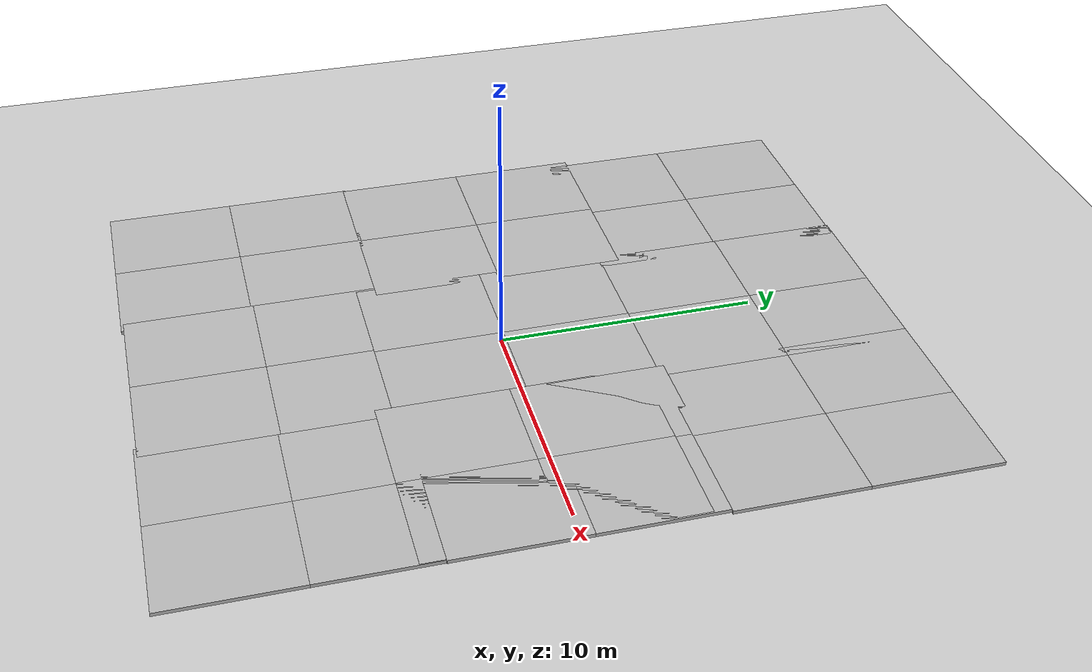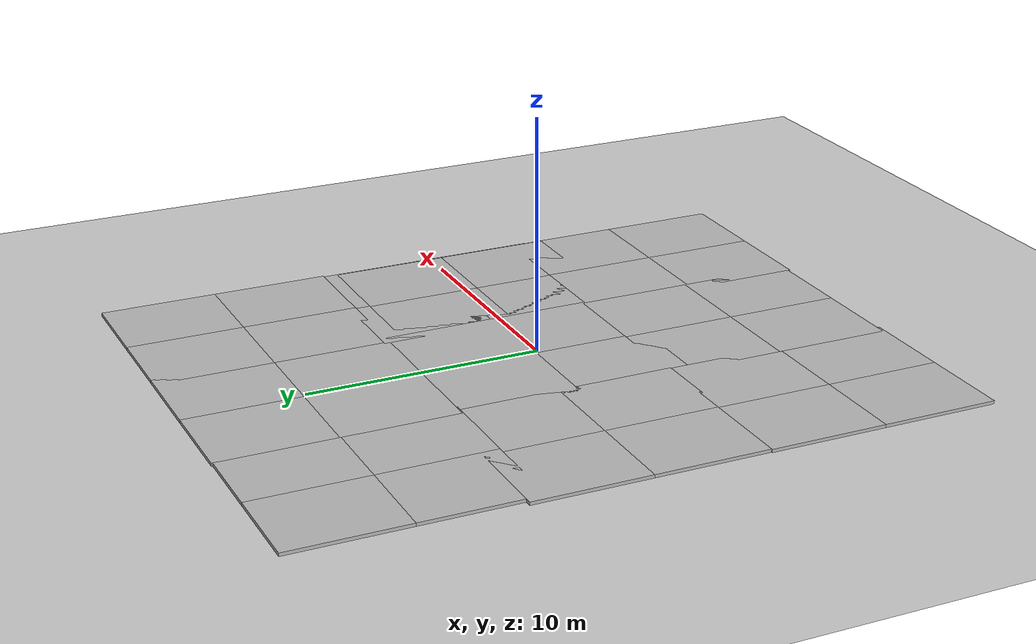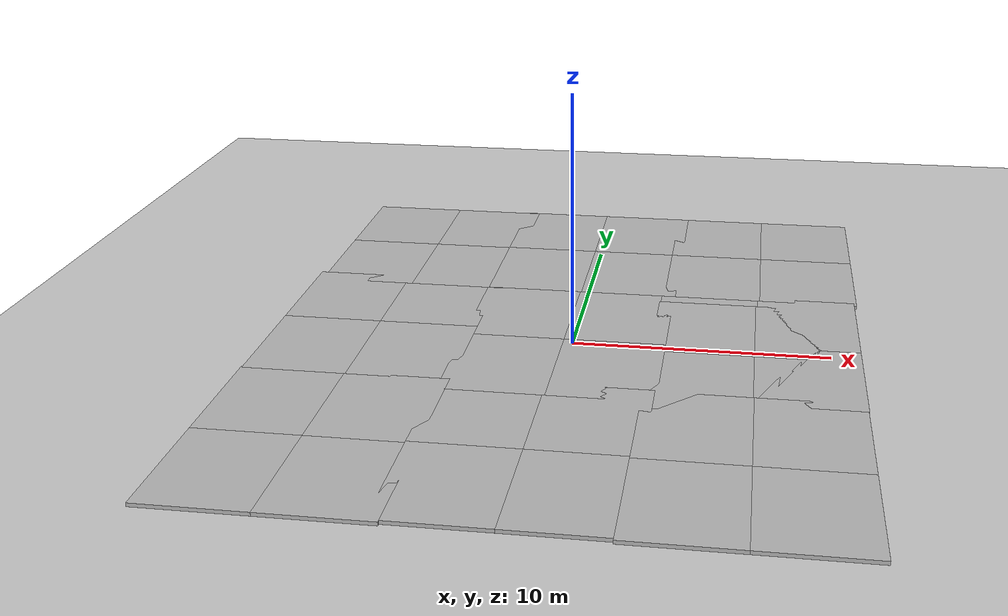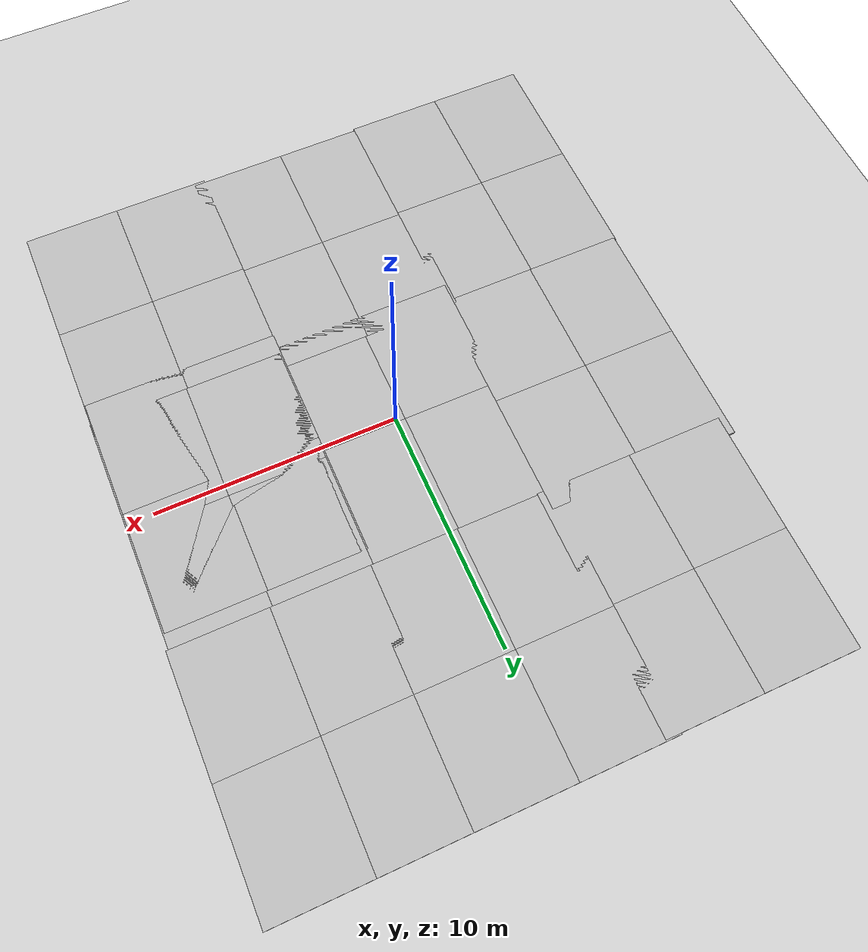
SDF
<sdf version="1.7">
 <world name="default">
  <light name="sun" type="directional">
   <pose>0 0 10 0 -0 0</pose>
   <diffuse>0.8 0.8 0.8 1</diffuse>
   <specular>0.2 0.2 0.2 1</specular>
   <attenuation>
    <range>1000</range>
    <constant>0.9</constant>
    <linear>0.01</linear>
    <quadratic>0.001</quadratic>
   </attenuation>
   <direction>-0.5 0.1 -0.9</direction>
   <spot><inner_angle>0</inner_angle><outer_angle>0</outer_angle><falloff>0</falloff></spot>
  </light>
  <model name="ground_plane">
   <static>1</static>
   <link name="link">
    <collision name="collision">
     <geometry><plane><normal>0 0 1</normal><size>100 100</size></plane></geometry>
     <surface>
      <contact><collide_bitmask>65535</collide_bitmask></contact>
      <friction><ode><mu>100</mu><mu2>50</mu2></ode></friction>
     </surface>
    </collision>
    <visual name="visual">
     <cast_shadows>0</cast_shadows>
     <geometry><plane><normal>0 0 1</normal><size>100 100</size></plane></geometry>
     <material>
      <script><uri>file://media/materials/scripts/gazebo.material</uri><name>Gazebo/Grey</name></script>
     </material>
    </visual>
   </link>
  </model>
  <gravity>0 0 -9.8</gravity>
  <magnetic_field>6e-06 2.3e-05 -4.2e-05</magnetic_field>
  <atmosphere type="adiabatic"/>
  <physics type="ode">
   <max_step_size>0.001</max_step_size>
   <real_time_factor>1</real_time_factor>
   <real_time_update_rate>1000</real_time_update_rate>
  </physics>
  <scene><ambient>0.4 0.4 0.4 1</ambient><background>0.7 0.7 0.7 1</background><shadows>1</shadows></scene>
  <spherical_coordinates>
   <surface_model>EARTH_WGS84</surface_model>
   <latitude_deg>0</latitude_deg>
   <longitude_deg>0</longitude_deg>
   <elevation>0</elevation>
   <heading_deg>0</heading_deg>
  </spherical_coordinates>
  <model name="mud_box_0">
   <static>1</static>
   <link name="link">
    <collision name="collision"><geometry><box><size>8 10 0.2</size></box></geometry></collision>
    <visual name="visual_1">
     <pose>-2 2.5 0 0 -0 0</pose>
     <cast_shadows>0</cast_shadows>
     <geometry><box><size>4 5 0.2</size></box></geometry>
     <material>
      <script>
       <uri>model://mud_box/materials/scripts</uri>
       <uri>model://mud_box/materials/textures</uri>
       <name>vrc/mud</name>
      </script>
     </material>
    </visual>
    <visual name="visual_2">
     <pose>2 2.5 0 0 -0 0</pose>
     <cast_shadows>0</cast_shadows>
     <geometry><box><size>4 5 0.2</size></box></geometry>
     <material>
      <script>
       <uri>model://mud_box/materials/scripts</uri>
       <uri>model://mud_box/materials/textures</uri>
       <name>vrc/mud</name>
      </script>
     </material>
    </visual>
    <visual name="visual_3">
     <pose>2 -2.5 0 0 -0 0</pose>
     <cast_shadows>0</cast_shadows>
     <geometry><box><size>4 5 0.2</size></box></geometry>
     <material>
      <script>
       <uri>model://mud_box/materials/scripts</uri>
       <uri>model://mud_box/materials/textures</uri>
       <name>vrc/mud</name>
      </script>
     </material>
    </visual>
    <visual name="visual_4">
     <pose>-2 -2.5 0 0 -0 0</pose>
     <cast_shadows>0</cast_shadows>
     <geometry><box><size>4 5 0.2</size></box></geometry>
     <material>
      <script>
       <uri>model://mud_box/materials/scripts</uri>
       <uri>model://mud_box/materials/textures</uri>
       <name>vrc/mud</name>
      </script>
     </material>
    </visual>
   </link>
   <pose>-0.308424 10.1728 0 0 -0 0</pose>
  </model>
  <model name="mud_box_0_clone">
   <static>1</static>
   <link name="link">
    <collision name="collision"><geometry><box><size>8 10 0.2</size></box></geometry></collision>
    <visual name="visual_1">
     <pose>-2 2.5 0 0 -0 0</pose>
     <cast_shadows>0</cast_shadows>
     <geometry><box><size>4 5 0.2</size></box></geometry>
     <material>
      <script>
       <uri>model://mud_box/materials/scripts</uri>
       <uri>model://mud_box/materials/textures</uri>
       <name>vrc/mud</name>
      </script>
     </material>
    </visual>
    <visual name="visual_2">
     <pose>2 2.5 0 0 -0 0</pose>
     <cast_shadows>0</cast_shadows>
     <geometry><box><size>4 5 0.2</size></box></geometry>
     <material>
      <script>
       <uri>model://mud_box/materials/scripts</uri>
       <uri>model://mud_box/materials/textures</uri>
       <name>vrc/mud</name>
      </script>
     </material>
    </visual>
    <visual name="visual_3">
     <pose>2 -2.5 0 0 -0 0</pose>
     <cast_shadows>0</cast_shadows>
     <geometry><box><size>4 5 0.2</size></box></geometry>
     <material>
      <script>
       <uri>model://mud_box/materials/scripts</uri>
       <uri>model://mud_box/materials/textures</uri>
       <name>vrc/mud</name>
      </script>
     </material>
    </visual>
    <visual name="visual_4">
     <pose>-2 -2.5 0 0 -0 0</pose>
     <cast_shadows>0</cast_shadows>
     <geometry><box><size>4 5 0.2</size></box></geometry>
     <material>
      <script>
       <uri>model://mud_box/materials/scripts</uri>
       <uri>model://mud_box/materials/textures</uri>
       <name>vrc/mud</name>
      </script>
     </material>
    </visual>
   </link>
   <pose>7.23243 10.1706 0 0 -0 0</pose>
  </model>
  <model name="mud_box_0_clone_1">
   <static>1</static>
   <link name="link">
    <collision name="collision"><geometry><box><size>8 10 0.2</size></box></geometry></collision>
    <visual name="visual_1">
     <pose>-2 2.5 0 0 -0 0</pose>
     <cast_shadows>0</cast_shadows>
     <geometry><box><size>4 5 0.2</size></box></geometry>
     <material>
      <script>
       <uri>model://mud_box/materials/scripts</uri>
       <uri>model://mud_box/materials/textures</uri>
       <name>vrc/mud</name>
      </script>
     </material>
    </visual>
    <visual name="visual_2">
     <pose>2 2.5 0 0 -0 0</pose>
     <cast_shadows>0</cast_shadows>
     <geometry><box><size>4 5 0.2</size></box></geometry>
     <material>
      <script>
       <uri>model://mud_box/materials/scripts</uri>
       <uri>model://mud_box/materials/textures</uri>
       <name>vrc/mud</name>
      </script>
     </material>
    </visual>
    <visual name="visual_3">
     <pose>2 -2.5 0 0 -0 0</pose>
     <cast_shadows>0</cast_shadows>
     <geometry><box><size>4 5 0.2</size></box></geometry>
     <material>
      <script>
       <uri>model://mud_box/materials/scripts</uri>
       <uri>model://mud_box/materials/textures</uri>
       <name>vrc/mud</name>
      </script>
     </material>
    </visual>
    <visual name="visual_4">
     <pose>-2 -2.5 0 0 -0 0</pose>
     <cast_shadows>0</cast_shadows>
     <geometry><box><size>4 5 0.2</size></box></geometry>
     <material>
      <script>
       <uri>model://mud_box/materials/scripts</uri>
       <uri>model://mud_box/materials/textures</uri>
       <name>vrc/mud</name>
      </script>
     </material>
    </visual>
   </link>
   <pose>7.10984 -8.97879 0 0 -0 0</pose>
  </model>
  <model name="mud_box_0_clone_4">
   <static>1</static>
   <link name="link">
    <collision name="collision"><geometry><box><size>8 10 0.2</size></box></geometry></collision>
    <visual name="visual_1">
     <pose>-2 2.5 0 0 -0 0</pose>
     <cast_shadows>0</cast_shadows>
     <geometry><box><size>4 5 0.2</size></box></geometry>
     <material>
      <script>
       <uri>model://mud_box/materials/scripts</uri>
       <uri>model://mud_box/materials/textures</uri>
       <name>vrc/mud</name>
      </script>
     </material>
    </visual>
    <visual name="visual_2">
     <pose>2 2.5 0 0 -0 0</pose>
     <cast_shadows>0</cast_shadows>
     <geometry><box><size>4 5 0.2</size></box></geometry>
     <material>
      <script>
       <uri>model://mud_box/materials/scripts</uri>
       <uri>model://mud_box/materials/textures</uri>
       <name>vrc/mud</name>
      </script>
     </material>
    </visual>
    <visual name="visual_3">
     <pose>2 -2.5 0 0 -0 0</pose>
     <cast_shadows>0</cast_shadows>
     <geometry><box><size>4 5 0.2</size></box></geometry>
     <material>
      <script>
       <uri>model://mud_box/materials/scripts</uri>
       <uri>model://mud_box/materials/textures</uri>
       <name>vrc/mud</name>
      </script>
     </material>
    </visual>
    <visual name="visual_4">
     <pose>-2 -2.5 0 0 -0 0</pose>
     <cast_shadows>0</cast_shadows>
     <geometry><box><size>4 5 0.2</size></box></geometry>
     <material>
      <script>
       <uri>model://mud_box/materials/scripts</uri>
       <uri>model://mud_box/materials/textures</uri>
       <name>vrc/mud</name>
      </script>
     </material>
    </visual>
   </link>
   <pose>-7.96903 0.919852 0 0 -0 0</pose>
  </model>
  <model name="mud_box_0_clone_5">
   <static>1</static>
   <link name="link">
    <collision name="collision"><geometry><box><size>8 10 0.2</size></box></geometry></collision>
    <visual name="visual_1">
     <pose>-2 2.5 0 0 -0 0</pose>
     <cast_shadows>0</cast_shadows>
     <geometry><box><size>4 5 0.2</size></box></geometry>
     <material>
      <script>
       <uri>model://mud_box/materials/scripts</uri>
       <uri>model://mud_box/materials/textures</uri>
       <name>vrc/mud</name>
      </script>
     </material>
    </visual>
    <visual name="visual_2">
     <pose>2 2.5 0 0 -0 0</pose>
     <cast_shadows>0</cast_shadows>
     <geometry><box><size>4 5 0.2</size></box></geometry>
     <material>
      <script>
       <uri>model://mud_box/materials/scripts</uri>
       <uri>model://mud_box/materials/textures</uri>
       <name>vrc/mud</name>
      </script>
     </material>
    </visual>
    <visual name="visual_3">
     <pose>2 -2.5 0 0 -0 0</pose>
     <cast_shadows>0</cast_shadows>
     <geometry><box><size>4 5 0.2</size></box></geometry>
     <material>
      <script>
       <uri>model://mud_box/materials/scripts</uri>
       <uri>model://mud_box/materials/textures</uri>
       <name>vrc/mud</name>
      </script>
     </material>
    </visual>
    <visual name="visual_4">
     <pose>-2 -2.5 0 0 -0 0</pose>
     <cast_shadows>0</cast_shadows>
     <geometry><box><size>4 5 0.2</size></box></geometry>
     <material>
      <script>
       <uri>model://mud_box/materials/scripts</uri>
       <uri>model://mud_box/materials/textures</uri>
       <name>vrc/mud</name>
      </script>
     </material>
    </visual>
   </link>
   <pose>-7.69602 10.1213 0 0 -0 0</pose>
  </model>
  <model name="mud_box_0_clone_1_clone">
   <static>1</static>
   <link name="link">
    <collision name="collision"><geometry><box><size>8 10 0.2</size></box></geometry></collision>
    <visual name="visual_1">
     <pose>-2 2.5 0 0 -0 0</pose>
     <cast_shadows>0</cast_shadows>
     <geometry><box><size>4 5 0.2</size></box></geometry>
     <material>
      <script>
       <uri>model://mud_box/materials/scripts</uri>
       <uri>model://mud_box/materials/textures</uri>
       <name>vrc/mud</name>
      </script>
     </material>
    </visual>
    <visual name="visual_2">
     <pose>2 2.5 0 0 -0 0</pose>
     <cast_shadows>0</cast_shadows>
     <geometry><box><size>4 5 0.2</size></box></geometry>
     <material>
      <script>
       <uri>model://mud_box/materials/scripts</uri>
       <uri>model://mud_box/materials/textures</uri>
       <name>vrc/mud</name>
      </script>
     </material>
    </visual>
    <visual name="visual_3">
     <pose>2 -2.5 0 0 -0 0</pose>
     <cast_shadows>0</cast_shadows>
     <geometry><box><size>4 5 0.2</size></box></geometry>
     <material>
      <script>
       <uri>model://mud_box/materials/scripts</uri>
       <uri>model://mud_box/materials/textures</uri>
       <name>vrc/mud</name>
      </script>
     </material>
    </visual>
    <visual name="visual_4">
     <pose>-2 -2.5 0 0 -0 0</pose>
     <cast_shadows>0</cast_shadows>
     <geometry><box><size>4 5 0.2</size></box></geometry>
     <material>
      <script>
       <uri>model://mud_box/materials/scripts</uri>
       <uri>model://mud_box/materials/textures</uri>
       <name>vrc/mud</name>
      </script>
     </material>
    </visual>
   </link>
   <pose>-0.352292 0.173494 0 0 -0 0</pose>
  </model>
  <model name="mud_box_0_clone_1_clone_0">
   <static>1</static>
   <link name="link">
    <collision name="collision"><geometry><box><size>8 10 0.2</size></box></geometry></collision>
    <visual name="visual_1">
     <pose>-2 2.5 0 0 -0 0</pose>
     <cast_shadows>0</cast_shadows>
     <geometry><box><size>4 5 0.2</size></box></geometry>
     <material>
      <script>
       <uri>model://mud_box/materials/scripts</uri>
       <uri>model://mud_box/materials/textures</uri>
       <name>vrc/mud</name>
      </script>
     </material>
    </visual>
    <visual name="visual_2">
     <pose>2 2.5 0 0 -0 0</pose>
     <cast_shadows>0</cast_shadows>
     <geometry><box><size>4 5 0.2</size></box></geometry>
     <material>
      <script>
       <uri>model://mud_box/materials/scripts</uri>
       <uri>model://mud_box/materials/textures</uri>
       <name>vrc/mud</name>
      </script>
     </material>
    </visual>
    <visual name="visual_3">
     <pose>2 -2.5 0 0 -0 0</pose>
     <cast_shadows>0</cast_shadows>
     <geometry><box><size>4 5 0.2</size></box></geometry>
     <material>
      <script>
       <uri>model://mud_box/materials/scripts</uri>
       <uri>model://mud_box/materials/textures</uri>
       <name>vrc/mud</name>
      </script>
     </material>
    </visual>
    <visual name="visual_4">
     <pose>-2 -2.5 0 0 -0 0</pose>
     <cast_shadows>0</cast_shadows>
     <geometry><box><size>4 5 0.2</size></box></geometry>
     <material>
      <script>
       <uri>model://mud_box/materials/scripts</uri>
       <uri>model://mud_box/materials/textures</uri>
       <name>vrc/mud</name>
      </script>
     </material>
    </visual>
   </link>
   <pose>7.07901 -0.447103 0 0 -0 0</pose>
  </model>
  <model name="mud_box_0_clone_1_clone_0_clone">
   <static>1</static>
   <link name="link">
    <collision name="collision"><geometry><box><size>8 10 0.2</size></box></geometry></collision>
    <visual name="visual_1">
     <pose>-2 2.5 0 0 -0 0</pose>
     <cast_shadows>0</cast_shadows>
     <geometry><box><size>4 5 0.2</size></box></geometry>
     <material>
      <script>
       <uri>model://mud_box/materials/scripts</uri>
       <uri>model://mud_box/materials/textures</uri>
       <name>vrc/mud</name>
      </script>
     </material>
    </visual>
    <visual name="visual_2">
     <pose>2 2.5 0 0 -0 0</pose>
     <cast_shadows>0</cast_shadows>
     <geometry><box><size>4 5 0.2</size></box></geometry>
     <material>
      <script>
       <uri>model://mud_box/materials/scripts</uri>
       <uri>model://mud_box/materials/textures</uri>
       <name>vrc/mud</name>
      </script>
     </material>
    </visual>
    <visual name="visual_3">
     <pose>2 -2.5 0 0 -0 0</pose>
     <cast_shadows>0</cast_shadows>
     <geometry><box><size>4 5 0.2</size></box></geometry>
     <material>
      <script>
       <uri>model://mud_box/materials/scripts</uri>
       <uri>model://mud_box/materials/textures</uri>
       <name>vrc/mud</name>
      </script>
     </material>
    </visual>
    <visual name="visual_4">
     <pose>-2 -2.5 0 0 -0 0</pose>
     <cast_shadows>0</cast_shadows>
     <geometry><box><size>4 5 0.2</size></box></geometry>
     <material>
      <script>
       <uri>model://mud_box/materials/scripts</uri>
       <uri>model://mud_box/materials/textures</uri>
       <name>vrc/mud</name>
      </script>
     </material>
    </visual>
   </link>
   <pose>7.13421 0.443991 0 0 -0 0</pose>
  </model>
  <model name="mud_box_0_clone_1_clone_1">
   <static>1</static>
   <link name="link">
    <collision name="collision"><geometry><box><size>8 10 0.2</size></box></geometry></collision>
    <visual name="visual_1">
     <pose>-2 2.5 0 0 -0 0</pose>
     <cast_shadows>0</cast_shadows>
     <geometry><box><size>4 5 0.2</size></box></geometry>
     <material>
      <script>
       <uri>model://mud_box/materials/scripts</uri>
       <uri>model://mud_box/materials/textures</uri>
       <name>vrc/mud</name>
      </script>
     </material>
    </visual>
    <visual name="visual_2">
     <pose>2 2.5 0 0 -0 0</pose>
     <cast_shadows>0</cast_shadows>
     <geometry><box><size>4 5 0.2</size></box></geometry>
     <material>
      <script>
       <uri>model://mud_box/materials/scripts</uri>
       <uri>model://mud_box/materials/textures</uri>
       <name>vrc/mud</name>
      </script>
     </material>
    </visual>
    <visual name="visual_3">
     <pose>2 -2.5 0 0 -0 0</pose>
     <cast_shadows>0</cast_shadows>
     <geometry><box><size>4 5 0.2</size></box></geometry>
     <material>
      <script>
       <uri>model://mud_box/materials/scripts</uri>
       <uri>model://mud_box/materials/textures</uri>
       <name>vrc/mud</name>
      </script>
     </material>
    </visual>
    <visual name="visual_4">
     <pose>-2 -2.5 0 0 -0 0</pose>
     <cast_shadows>0</cast_shadows>
     <geometry><box><size>4 5 0.2</size></box></geometry>
     <material>
      <script>
       <uri>model://mud_box/materials/scripts</uri>
       <uri>model://mud_box/materials/textures</uri>
       <name>vrc/mud</name>
      </script>
     </material>
    </visual>
   </link>
   <pose>-0.447098 -8.882 0 0 -0 0</pose>
  </model>
  <model name="mud_box_0_clone_1_clone_2">
   <static>1</static>
   <link name="link">
    <collision name="collision"><geometry><box><size>8 10 0.2</size></box></geometry></collision>
    <visual name="visual_1">
     <pose>-2 2.5 0 0 -0 0</pose>
     <cast_shadows>0</cast_shadows>
     <geometry><box><size>4 5 0.2</size></box></geometry>
     <material>
      <script>
       <uri>model://mud_box/materials/scripts</uri>
       <uri>model://mud_box/materials/textures</uri>
       <name>vrc/mud</name>
      </script>
     </material>
    </visual>
    <visual name="visual_2">
     <pose>2 2.5 0 0 -0 0</pose>
     <cast_shadows>0</cast_shadows>
     <geometry><box><size>4 5 0.2</size></box></geometry>
     <material>
      <script>
       <uri>model://mud_box/materials/scripts</uri>
       <uri>model://mud_box/materials/textures</uri>
       <name>vrc/mud</name>
      </script>
     </material>
    </visual>
    <visual name="visual_3">
     <pose>2 -2.5 0 0 -0 0</pose>
     <cast_shadows>0</cast_shadows>
     <geometry><box><size>4 5 0.2</size></box></geometry>
     <material>
      <script>
       <uri>model://mud_box/materials/scripts</uri>
       <uri>model://mud_box/materials/textures</uri>
       <name>vrc/mud</name>
      </script>
     </material>
    </visual>
    <visual name="visual_4">
     <pose>-2 -2.5 0 0 -0 0</pose>
     <cast_shadows>0</cast_shadows>
     <geometry><box><size>4 5 0.2</size></box></geometry>
     <material>
      <script>
       <uri>model://mud_box/materials/scripts</uri>
       <uri>model://mud_box/materials/textures</uri>
       <name>vrc/mud</name>
      </script>
     </material>
    </visual>
   </link>
   <pose>-8.01153 -8.98007 0 0 -0 0</pose>
  </model>
 </world>
</sdf>
